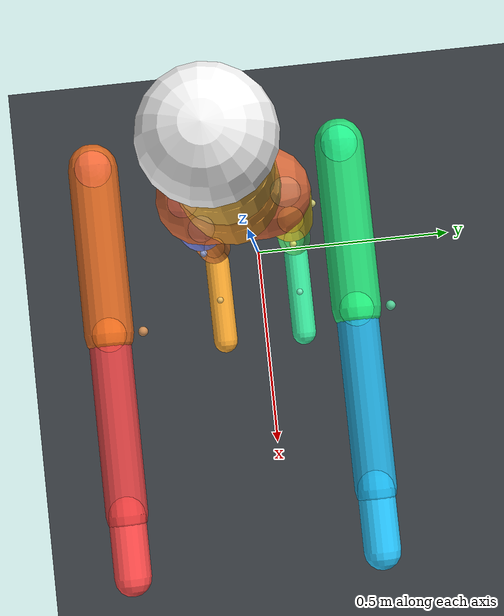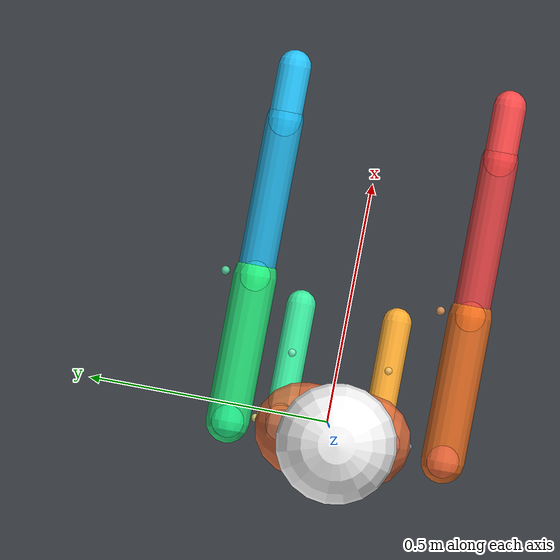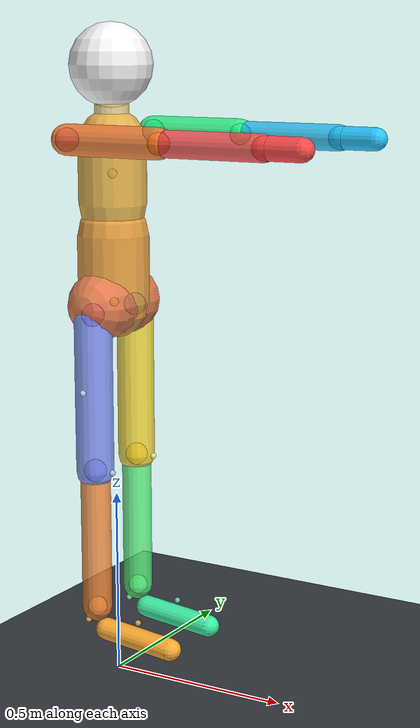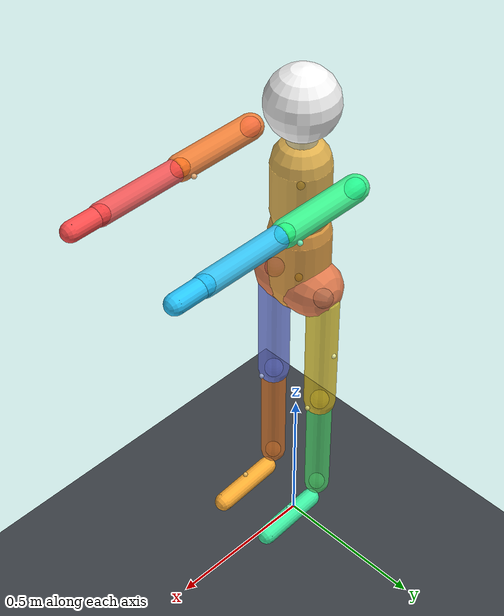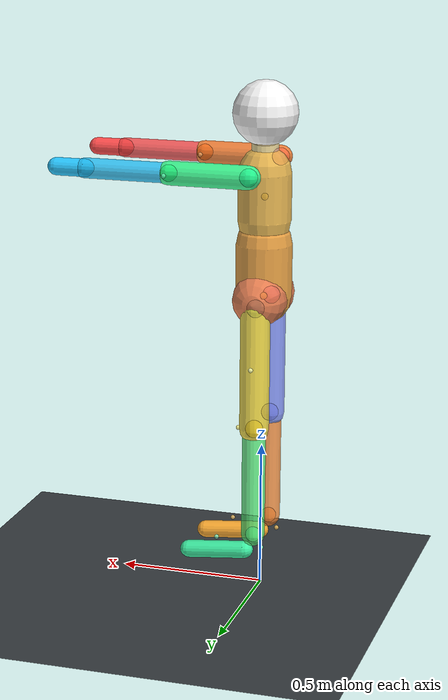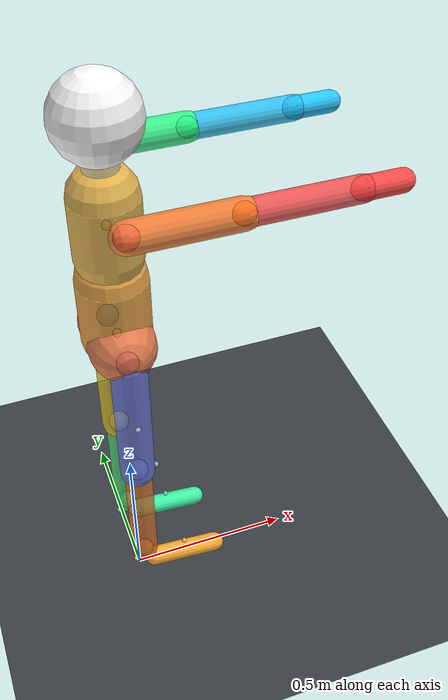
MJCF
<mujoco model="custom_articulated_human">
  <compiler angle="degree"/>
  <option timestep="0.005" gravity="0 0 -9.81" integrator="implicitfast"/>

  <default>
    <joint limited="true" damping="2" stiffness="0.5" armature="0.01"/>
    <geom conaffinity="1" contype="1" friction="0.8 0.1 0.05" density="0"/>
    <motor ctrllimited="true"/>

    <default class="trunk_joint">
      <joint damping="8" stiffness="2"/>
    </default>

    <default class="shoulder_joint">
      <joint damping="3" stiffness="1"/>
    </default>

    <default class="hip_joint">
      <joint damping="4" stiffness="1"/>
    </default>

    <default class="elbow_joint">
      <joint damping="2" stiffness="0.5"/>
    </default>

    <default class="knee_joint">
      <joint damping="3" stiffness="0.5"/>
    </default>

    <default class="ankle_joint">
      <joint damping="2.5" stiffness="0.5"/>
    </default>
  </default>

  <asset>
    <texture name="grid" type="2d" builtin="checker" width="512" height="512"
      rgb1="0.15 0.17 0.19" rgb2="0.09 0.10 0.11"/>
    <material name="grid" texture="grid" texrepeat="8 8" reflectance="0.05"/>
  </asset>

  <worldbody>
    <light pos="0 0 5" dir="0 0 -1" directional="true"/>
    <geom name="floor" type="plane" size="5 5 0.1" material="grid" rgba="0.22 0.24 0.26 1"/>
    <camera name="overview" pos="3.0 -3.3 2.2" xyaxes="0.73 0.68 0 -0.24 0.25 0.94"/>

    <body name="pelvis" pos="0 0 1.03">
      <freejoint name="root"/>
      <inertial pos="0 0 0" mass="6.400000" diaginertia="0.021000 0.026000 0.021000"/>
      <geom name="pelvis_geom" type="capsule" fromto="0 -0.06 0 0 0.06 0" size="0.09" rgba="0.95 0.48 0.28 0.88"/>
      <site name="pelvis_site" pos="0 0 0" size="0.012" rgba="1 0.95 0.30 0.9"/>

      <body name="torso_base" pos="0 0 0.02">
        <joint name="abdomen_z" class="trunk_joint" type="hinge" axis="0 0 1" range="-50 50"/>
        <joint name="abdomen_y" class="trunk_joint" type="hinge" axis="0 1 0" range="-80 50"/>
        <joint name="abdomen_x" class="trunk_joint" type="hinge" axis="1 0 0" range="-45 45"/>
        <inertial pos="0 0 0.08" mass="10.200000" diaginertia="0.060000 0.060000 0.051000"/>
        <geom
          name="lower_torso_geom"
          type="capsule"
          fromto="0 0 -0.02 0 0 0.16"
          size="0.095"
          rgba="0.96 0.62 0.20 0.86"/>
        <body name="thorax" pos="0 0 0.32">
        <inertial pos="0 0 0.05" mass="17.768000" diaginertia="0.125000 0.090000 0.070000"/>
        <geom name="thorax_geom" type="capsule" fromto="0 0 -0.08 0 0 0.08" size="0.090" rgba="0.95 0.72 0.28 0.88"/>
        <geom name="neck_geom" type="capsule" fromto="0 0 0.08 0 0 0.18" size="0.045" rgba="0.97 0.84 0.54 0.80"/>
        <site name="thorax_site" pos="0 0 0" size="0.012" rgba="1 0.95 0.30 0.9"/>

        <joint name="neck_z" class="trunk_joint" type="hinge" axis="0 0 1" range="-50 50"/>
        <joint name="neck_y" class="trunk_joint" type="hinge" axis="0 1 0" range="-45 45"/>
        <joint name="neck_x" class="trunk_joint" type="hinge" axis="1 0 0" range="-45 45"/>
        <body name="head" pos="0 0 0.28">
          <inertial pos="0 0 0" mass="5.552000" diaginertia="0.022208 0.022208 0.022208"/>
          <geom name="head_geom" type="sphere" size="0.11" rgba="0.98 0.98 0.98 0.92"/>
          <site name="head_site" pos="0 0 0" size="0.012" rgba="1 0.95 0.30 0.9"/>
        </body>

        <body name="left_shoulder_mount" pos="0 0.20 0.10">
          <joint name="shoulder_shrug_left" class="shoulder_joint" type="slide" axis="0 0 1" range="0 0.10"/>
          <joint name="shoulder1_left" class="shoulder_joint" type="hinge" axis="-2 1 -1" range="-120 120"/>
          <joint name="shoulder2_left" class="shoulder_joint" type="hinge" axis="0 -1 -1" range="-120 120"/>
          <joint name="shoulder3_left" class="shoulder_joint" type="hinge" axis="1 1 -1" range="-150 150"/>
          <inertial pos="0 0 0.03" mass="0.100000" diaginertia="0.000083 0.000083 0.000060"/>
          <geom name="left_shoulder_marker" type="sphere" size="0.03" rgba="0.14 0.92 0.88 0.9"/>
          <site name="left_shoulder_site" pos="0 0 0" size="0.010" rgba="0.14 0.92 0.88 0.9"/>
          <body name="left_upper_arm" pos="0 0 0">
            <inertial pos="0.135 0 0" mass="2.168000" diaginertia="0.001734 0.014037 0.014037"/>
            <geom name="left_upper_arm_geom" type="capsule" fromto="0 0 0 0.27 0 0" size="0.04" rgba="0.18 1 0.54 0.85"/>
            <body name="left_elbow" pos="0.27 0 0">
              <joint name="elbow_left" class="elbow_joint" type="hinge" axis="0 -1 -1" range="-175 10"/>
              <inertial pos="0.145 0 0" mass="1.296000" diaginertia="0.000749 0.009457 0.009457"/>
              <geom name="left_elbow_marker" type="sphere" size="0.028" rgba="0.18 1 0.54 0.9"/>
              <site name="left_elbow_site" pos="0 0 0" size="0.010" rgba="0.18 1 0.54 0.9"/>
              <site name="left_elbow_pole_site" pos="0 0.055 0" size="0.008" rgba="0.40 1 0.72 0.8"/>
              <geom name="left_forearm_geom" type="capsule" fromto="0 0 0 0.29 0 0" size="0.034" rgba="0.16 0.78 1 0.85"/>
              <body name="left_hand" pos="0.29 0 0">
                <inertial pos="0.05 0 0" mass="0.488000" diaginertia="0.000220 0.000516 0.000516"/>
                <geom name="left_hand_geom" type="capsule" fromto="0 0 0 0.10 0 0" size="0.03" rgba="0.16 0.78 1 0.92"/>
                <site name="left_hand_site" pos="0.10 0 0" size="0.010" rgba="0.16 0.78 1 0.92"/>
              </body>
            </body>
          </body>
        </body>

        <body name="right_shoulder_mount" pos="0 -0.20 0.10">
          <joint name="shoulder_shrug_right" class="shoulder_joint" type="slide" axis="0 0 1" range="0 0.10"/>
          <joint name="shoulder1_right" class="shoulder_joint" type="hinge" axis="2 1 1" range="-120 120"/>
          <joint name="shoulder2_right" class="shoulder_joint" type="hinge" axis="0 -1 1" range="-120 120"/>
          <joint name="shoulder3_right" class="shoulder_joint" type="hinge" axis="1 -1 -1" range="-150 150"/>
          <inertial pos="0 0 0.03" mass="0.100000" diaginertia="0.000083 0.000083 0.000060"/>
          <geom name="right_shoulder_marker" type="sphere" size="0.03" rgba="0.92 0.36 0.88 0.9"/>
          <site name="right_shoulder_site" pos="0 0 0" size="0.010" rgba="0.92 0.36 0.88 0.9"/>
          <body name="right_upper_arm" pos="0 0 0">
            <inertial pos="0.135 0 0" mass="2.168000" diaginertia="0.001734 0.014037 0.014037"/>
            <geom name="right_upper_arm_geom" type="capsule" fromto="0 0 0 0.27 0 0" size="0.04" rgba="1 0.48 0.16 0.85"/>
            <body name="right_elbow" pos="0.27 0 0">
              <joint name="elbow_right" class="elbow_joint" type="hinge" axis="0 -1 1" range="-175 10"/>
              <inertial pos="0.145 0 0" mass="1.296000" diaginertia="0.000749 0.009457 0.009457"/>
              <geom name="right_elbow_marker" type="sphere" size="0.028" rgba="1 0.48 0.16 0.9"/>
              <site name="right_elbow_site" pos="0 0 0" size="0.010" rgba="1 0.48 0.16 0.9"/>
              <site name="right_elbow_pole_site" pos="0 0.055 0" size="0.008" rgba="1 0.68 0.40 0.8"/>
              <geom name="right_forearm_geom" type="capsule" fromto="0 0 0 0.29 0 0" size="0.034" rgba="1 0.30 0.30 0.85"/>
              <body name="right_hand" pos="0.29 0 0">
                <inertial pos="0.05 0 0" mass="0.488000" diaginertia="0.000220 0.000516 0.000516"/>
                <geom name="right_hand_geom" type="capsule" fromto="0 0 0 0.10 0 0" size="0.03" rgba="1 0.30 0.30 0.92"/>
                <site name="right_hand_site" pos="0.10 0 0" size="0.010" rgba="1 0.30 0.30 0.92"/>
              </body>
            </body>
          </body>
        </body>
      </body>
      </body>

      <body name="left_hip_mount" pos="0 0.10 -0.02">
        <joint name="hip_x_left" class="hip_joint" type="hinge" axis="1 0 0" range="-55 45"/>
        <joint name="hip_z_left" class="hip_joint" type="hinge" axis="0 0 1" range="-45 45"/>
        <joint name="hip_y_left" class="hip_joint" type="hinge" axis="0 1 0" range="-170 45"/>
        <inertial pos="0 0 0" mass="0.100000" diaginertia="0.000060 0.000083 0.000083"/>
        <geom name="left_hip_marker" type="sphere" size="0.03" rgba="0.28 0.82 1 0.9"/>
        <site name="left_hip_site" pos="0 0 0" size="0.010" rgba="0.28 0.82 1 0.9"/>
        <body name="left_thigh" pos="0 0 0">
          <inertial pos="0 0 -0.21" mass="11.328000" diaginertia="0.173536 0.173536 0.014160"/>
          <geom name="left_thigh_geom" type="capsule" fromto="0 0 0 0 0 -0.42" size="0.05" rgba="1 0.88 0.22 0.85"/>
          <site name="left_thigh_lateral_site" pos="0 0.05 -0.20" size="0.008" rgba="1 0.98 0.56 0.80"/>
            <body name="left_knee" pos="0 0 -0.42">
              <joint name="knee_left" class="knee_joint" type="hinge" axis="0 1 0" range="-170 0"/>
              <inertial pos="0 0 -0.19" mass="3.464000" diaginertia="0.043064 0.043064 0.002771"/>
              <geom name="left_knee_marker" type="sphere" size="0.03" rgba="1 0.88 0.22 0.9"/>
              <site name="left_knee_site" pos="0 0 0" size="0.010" rgba="1 0.88 0.22 0.9"/>
              <site name="left_knee_pole_site" pos="0.055 0 0" size="0.008" rgba="1 0.96 0.48 0.8"/>
              <site name="left_knee_forward_site" pos="0.040 0 0" size="0.007" rgba="1 0.98 0.62 0.72"/>
              <geom name="left_shin_geom" type="capsule" fromto="0 0 0 0 0 -0.38" size="0.04" rgba="0.40 1 0.54 0.85"/>
            <body name="left_ankle" pos="0 0 -0.38">
              <joint name="ankle_y_left" class="ankle_joint" type="hinge" axis="0 1 0" range="-90 120"/>
              <joint name="ankle_x_left" class="ankle_joint" type="hinge" axis="-1 0 -0.5" range="-35 35"/>
              <inertial pos="0 0 0" mass="0.000001" diaginertia="0.000001 0.000001 0.000001"/>
              <geom name="left_ankle_marker" type="sphere" size="0.026" rgba="0.40 1 0.54 0.9"/>
              <site name="left_ankle_site" pos="0 0 0" size="0.010" rgba="0.40 1 0.54 0.9"/>
              <body name="left_foot" pos="0.03 0 -0.06">
                <inertial pos="0.06 0 -0.01" mass="1.096000" diaginertia="0.001552 0.004228 0.004528"/>
                <geom name="left_foot_geom" type="capsule" fromto="0 0 0 0.20 0 -0.02" size="0.03" rgba="0.24 0.94 0.64 0.92"/>
                <site name="left_heel_site" pos="-0.06 0 0.015" size="0.008" rgba="0.48 1 0.74 0.82"/>
                <site name="left_foot_site" pos="0.18 0 -0.018" size="0.010" rgba="0.24 0.94 0.64 0.92"/>
                <site name="left_foot_dorsal_site" pos="0.10 0 0.035" size="0.008" rgba="0.54 1 0.82 0.80"/>
              </body>
            </body>
          </body>
        </body>
      </body>

      <body name="right_hip_mount" pos="0 -0.10 -0.02">
        <joint name="hip_x_right" class="hip_joint" type="hinge" axis="1 0 0" range="-55 45"/>
        <joint name="hip_z_right" class="hip_joint" type="hinge" axis="0 0 1" range="-45 45"/>
        <joint name="hip_y_right" class="hip_joint" type="hinge" axis="0 1 0" range="-170 45"/>
        <inertial pos="0 0 0" mass="0.100000" diaginertia="0.000060 0.000083 0.000083"/>
        <geom name="right_hip_marker" type="sphere" size="0.03" rgba="0.82 0.46 1 0.9"/>
        <site name="right_hip_site" pos="0 0 0" size="0.010" rgba="0.82 0.46 1 0.9"/>
        <body name="right_thigh" pos="0 0 0">
          <inertial pos="0 0 -0.21" mass="11.328000" diaginertia="0.173536 0.173536 0.014160"/>
          <geom name="right_thigh_geom" type="capsule" fromto="0 0 0 0 0 -0.42" size="0.05" rgba="0.52 0.58 1 0.85"/>
          <site name="right_thigh_lateral_site" pos="0 -0.05 -0.20" size="0.008" rgba="0.82 0.86 1 0.80"/>
            <body name="right_knee" pos="0 0 -0.42">
              <joint name="knee_right" class="knee_joint" type="hinge" axis="0 1 0" range="-170 0"/>
              <inertial pos="0 0 -0.19" mass="3.464000" diaginertia="0.043064 0.043064 0.002771"/>
              <geom name="right_knee_marker" type="sphere" size="0.03" rgba="0.52 0.58 1 0.9"/>
              <site name="right_knee_site" pos="0 0 0" size="0.010" rgba="0.52 0.58 1 0.9"/>
              <site name="right_knee_pole_site" pos="0.055 0 0" size="0.008" rgba="0.72 0.78 1 0.8"/>
              <site name="right_knee_forward_site" pos="0.040 0 0" size="0.007" rgba="0.82 0.88 1 0.72"/>
              <geom name="right_shin_geom" type="capsule" fromto="0 0 0 0 0 -0.38" size="0.04" rgba="1 0.58 0.26 0.85"/>
            <body name="right_ankle" pos="0 0 -0.38">
              <joint name="ankle_y_right" class="ankle_joint" type="hinge" axis="0 1 0" range="-90 120"/>
              <joint name="ankle_x_right" class="ankle_joint" type="hinge" axis="1 0 0.5" range="-35 35"/>
              <inertial pos="0 0 0" mass="0.000001" diaginertia="0.000001 0.000001 0.000001"/>
              <geom name="right_ankle_marker" type="sphere" size="0.026" rgba="1 0.58 0.26 0.9"/>
              <site name="right_ankle_site" pos="0 0 0" size="0.010" rgba="1 0.58 0.26 0.9"/>
              <body name="right_foot" pos="0.03 0 -0.06">
                <inertial pos="0.06 0 -0.01" mass="1.096000" diaginertia="0.001552 0.004228 0.004528"/>
                <geom name="right_foot_geom" type="capsule" fromto="0 0 0 0.20 0 -0.02" size="0.03" rgba="1 0.68 0.20 0.92"/>
                <site name="right_heel_site" pos="-0.06 0 0.015" size="0.008" rgba="1 0.80 0.40 0.82"/>
                <site name="right_foot_site" pos="0.18 0 -0.018" size="0.010" rgba="1 0.68 0.20 0.92"/>
                <site name="right_foot_dorsal_site" pos="0.10 0 0.035" size="0.008" rgba="1 0.82 0.46 0.80"/>
              </body>
            </body>
          </body>
        </body>
      </body>
    </body>
  </worldbody>

  <actuator>
    <motor name="abdomen_z_motor" joint="abdomen_z" ctrlrange="-1 1" gear="220"/>
    <motor name="abdomen_y_motor" joint="abdomen_y" ctrlrange="-1 1" gear="220"/>
    <motor name="abdomen_x_motor" joint="abdomen_x" ctrlrange="-1 1" gear="220"/>
    <motor name="neck_z_motor" joint="neck_z" ctrlrange="-1 1" gear="60"/>
    <motor name="neck_y_motor" joint="neck_y" ctrlrange="-1 1" gear="60"/>
    <motor name="neck_x_motor" joint="neck_x" ctrlrange="-1 1" gear="60"/>

    <motor name="shoulder_shrug_left_motor" joint="shoulder_shrug_left" ctrlrange="0 0.10" gear="400"/>
    <motor name="shoulder1_left_motor" joint="shoulder1_left" ctrlrange="-2.094 2.094" gear="140"/>
    <motor name="shoulder2_left_motor" joint="shoulder2_left" ctrlrange="-2.094 2.094" gear="140"/>
    <motor name="shoulder3_left_motor" joint="shoulder3_left" ctrlrange="-2.618 2.618" gear="120"/>
    <motor name="elbow_left_motor" joint="elbow_left" ctrlrange="-3.054 0.175" gear="120"/>

    <motor name="shoulder_shrug_right_motor" joint="shoulder_shrug_right" ctrlrange="0 0.10" gear="400"/>
    <motor name="shoulder1_right_motor" joint="shoulder1_right" ctrlrange="-2.094 2.094" gear="140"/>
    <motor name="shoulder2_right_motor" joint="shoulder2_right" ctrlrange="-2.094 2.094" gear="140"/>
    <motor name="shoulder3_right_motor" joint="shoulder3_right" ctrlrange="-2.618 2.618" gear="120"/>
    <motor name="elbow_right_motor" joint="elbow_right" ctrlrange="-3.054 0.175" gear="120"/>

    <motor name="hip_x_left_motor" joint="hip_x_left" ctrlrange="-0.960 0.785" gear="320"/>
    <motor name="hip_z_left_motor" joint="hip_z_left" ctrlrange="-1.920 1.396" gear="320"/>
    <motor name="hip_y_left_motor" joint="hip_y_left" ctrlrange="-2.967 0.785" gear="420"/>
    <motor name="knee_left_motor" joint="knee_left" ctrlrange="-2.967 0.087" gear="360"/>
    <motor name="ankle_y_left_motor" joint="ankle_y_left" ctrlrange="-1.571 2.094" gear="180"/>
    <motor name="ankle_x_left_motor" joint="ankle_x_left" ctrlrange="-1.047 1.047" gear="160"/>

    <motor name="hip_x_right_motor" joint="hip_x_right" ctrlrange="-0.960 0.785" gear="320"/>
    <motor name="hip_z_right_motor" joint="hip_z_right" ctrlrange="-1.920 1.396" gear="320"/>
    <motor name="hip_y_right_motor" joint="hip_y_right" ctrlrange="-2.967 0.785" gear="420"/>
    <motor name="knee_right_motor" joint="knee_right" ctrlrange="-2.967 0.087" gear="360"/>
    <motor name="ankle_y_right_motor" joint="ankle_y_right" ctrlrange="-1.571 2.094" gear="180"/>
    <motor name="ankle_x_right_motor" joint="ankle_x_right" ctrlrange="-1.047 1.047" gear="160"/>
  </actuator>
</mujoco>
